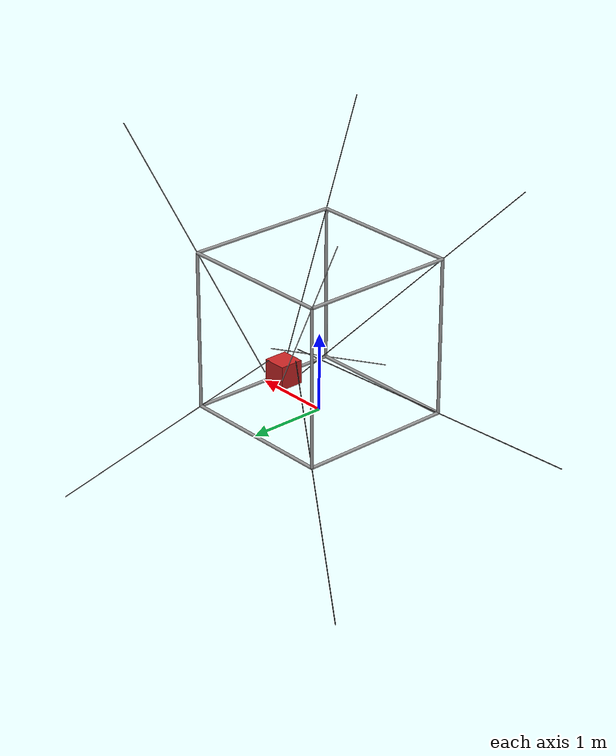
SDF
<?xml version="1.0"?>
<sdf version="1.4">
  <model name="sdf/cdpr_final">
    <!--Definition of the robot frame-->
    <link name="frame">
      <pose>0 0 0 0 0 0</pose>
      <inertial>
        <inertia>
          <ixx>100000</ixx>
          <iyy>100000</iyy>
          <izz>100000</izz>
          <ixy>0</ixy>
          <ixz>0</ixz>
          <iyz>0</iyz>
        </inertia>
        <mass>100000</mass>
      </inertial>
      <visual name="visual1">
        <geometry>
          <cylinder>
            <radius>0.02</radius>
            <length>2.0</length>
          </cylinder>
        </geometry>
        <pose>-1.000000 -1.000000 1.000000 0.000000 0.000000 0.000000</pose>
        <material>
          <script>
            <uri>file://media/materials/scripts/kitchen.material</uri>
            <name>Gazebo/Grey</name>
          </script>
        </material>
      </visual>
      <collision name="collision1">
        <geometry>
          <cylinder>
            <radius>0.02</radius>
          </cylinder>
        </geometry>
        <pose>-1.000000 -1.000000 1.000000 0.000000 0.000000 0.000000</pose>
      </collision>
      <visual name="visual2">
        <geometry>
          <cylinder>
            <radius>0.02</radius>
            <length>2.0</length>
          </cylinder>
        </geometry>
        <pose>-1.000000 0.000000 0.000000 1.570796 0.000000 0.000000</pose>
        <material>
          <script>
            <uri>file://media/materials/scripts/kitchen.material</uri>
            <name>Gazebo/Grey</name>
          </script>
        </material>
      </visual>
      <collision name="collision2">
        <geometry>
          <cylinder>
            <radius>0.02</radius>
          </cylinder>
        </geometry>
        <pose>-1.000000 0.000000 0.000000 1.570796 0.000000 0.000000</pose>
      </collision>
      <visual name="visual3">
        <geometry>
          <cylinder>
            <radius>0.02</radius>
            <length>2.0</length>
          </cylinder>
        </geometry>
        <pose>0.000000 -1.000000 0.000000 0.000000 1.570796 0.000000</pose>
        <material>
          <script>
            <uri>file://media/materials/scripts/kitchen.material</uri>
            <name>Gazebo/Grey</name>
          </script>
        </material>
      </visual>
      <collision name="collision3">
        <geometry>
          <cylinder>
            <radius>0.02</radius>
          </cylinder>
        </geometry>
        <pose>0.000000 -1.000000 0.000000 0.000000 1.570796 0.000000</pose>
      </collision>
      <visual name="visual4">
        <geometry>
          <cylinder>
            <radius>0.02</radius>
            <length>2.0</length>
          </cylinder>
        </geometry>
        <pose>-1.000000 0.000000 2.000000 1.570796 0.000000 0.000000</pose>
        <material>
          <script>
            <uri>file://media/materials/scripts/kitchen.material</uri>
            <name>Gazebo/Grey</name>
          </script>
        </material>
      </visual>
      <collision name="collision4">
        <geometry>
          <cylinder>
            <radius>0.02</radius>
          </cylinder>
        </geometry>
        <pose>-1.000000 0.000000 2.000000 1.570796 0.000000 0.000000</pose>
      </collision>
      <visual name="visual5">
        <geometry>
          <cylinder>
            <radius>0.02</radius>
            <length>2.0</length>
          </cylinder>
        </geometry>
        <pose>0.000000 -1.000000 2.000000 0.000000 1.570796 0.000000</pose>
        <material>
          <script>
            <uri>file://media/materials/scripts/kitchen.material</uri>
            <name>Gazebo/Grey</name>
          </script>
        </material>
      </visual>
      <collision name="collision5">
        <geometry>
          <cylinder>
            <radius>0.02</radius>
          </cylinder>
        </geometry>
        <pose>0.000000 -1.000000 2.000000 0.000000 1.570796 0.000000</pose>
      </collision>
      <visual name="visual6">
        <geometry>
          <cylinder>
            <radius>0.02</radius>
            <length>2.0</length>
          </cylinder>
        </geometry>
        <pose>-1.000000 1.000000 1.000000 0.000000 0.000000 0.000000</pose>
        <material>
          <script>
            <uri>file://media/materials/scripts/kitchen.material</uri>
            <name>Gazebo/Grey</name>
          </script>
        </material>
      </visual>
      <collision name="collision6">
        <geometry>
          <cylinder>
            <radius>0.02</radius>
          </cylinder>
        </geometry>
        <pose>-1.000000 1.000000 1.000000 0.000000 0.000000 0.000000</pose>
      </collision>
      <visual name="visual7">
        <geometry>
          <cylinder>
            <radius>0.02</radius>
            <length>2.0</length>
          </cylinder>
        </geometry>
        <pose>0.000000 1.000000 0.000000 0.000000 1.570796 0.000000</pose>
        <material>
          <script>
            <uri>file://media/materials/scripts/kitchen.material</uri>
            <name>Gazebo/Grey</name>
          </script>
        </material>
      </visual>
      <collision name="collision7">
        <geometry>
          <cylinder>
            <radius>0.02</radius>
          </cylinder>
        </geometry>
        <pose>0.000000 1.000000 0.000000 0.000000 1.570796 0.000000</pose>
      </collision>
      <visual name="visual8">
        <geometry>
          <cylinder>
            <radius>0.02</radius>
            <length>2.0</length>
          </cylinder>
        </geometry>
        <pose>0.000000 1.000000 2.000000 0.000000 1.570796 0.000000</pose>
        <material>
          <script>
            <uri>file://media/materials/scripts/kitchen.material</uri>
            <name>Gazebo/Grey</name>
          </script>
        </material>
      </visual>
      <collision name="collision8">
        <geometry>
          <cylinder>
            <radius>0.02</radius>
          </cylinder>
        </geometry>
        <pose>0.000000 1.000000 2.000000 0.000000 1.570796 0.000000</pose>
      </collision>
      <visual name="visual9">
        <geometry>
          <cylinder>
            <radius>0.02</radius>
            <length>2.0</length>
          </cylinder>
        </geometry>
        <pose>1.000000 -1.000000 1.000000 0.000000 0.000000 0.000000</pose>
        <material>
          <script>
            <uri>file://media/materials/scripts/kitchen.material</uri>
            <name>Gazebo/Grey</name>
          </script>
        </material>
      </visual>
      <collision name="collision9">
        <geometry>
          <cylinder>
            <radius>0.02</radius>
          </cylinder>
        </geometry>
        <pose>1.000000 -1.000000 1.000000 0.000000 0.000000 0.000000</pose>
      </collision>
      <visual name="visual10">
        <geometry>
          <cylinder>
            <radius>0.02</radius>
            <length>2.0</length>
          </cylinder>
        </geometry>
        <pose>1.000000 0.000000 0.000000 1.570796 0.000000 0.000000</pose>
        <material>
          <script>
            <uri>file://media/materials/scripts/kitchen.material</uri>
            <name>Gazebo/Grey</name>
          </script>
        </material>
      </visual>
      <collision name="collision10">
        <geometry>
          <cylinder>
            <radius>0.02</radius>
          </cylinder>
        </geometry>
        <pose>1.000000 0.000000 0.000000 1.570796 0.000000 0.000000</pose>
      </collision>
      <visual name="visual11">
        <geometry>
          <cylinder>
            <radius>0.02</radius>
            <length>2.0</length>
          </cylinder>
        </geometry>
        <pose>1.000000 0.000000 2.000000 1.570796 0.000000 0.000000</pose>
        <material>
          <script>
            <uri>file://media/materials/scripts/kitchen.material</uri>
            <name>Gazebo/Grey</name>
          </script>
        </material>
      </visual>
      <collision name="collision11">
        <geometry>
          <cylinder>
            <radius>0.02</radius>
          </cylinder>
        </geometry>
        <pose>1.000000 0.000000 2.000000 1.570796 0.000000 0.000000</pose>
      </collision>
      <visual name="visual12">
        <geometry>
          <cylinder>
            <radius>0.02</radius>
            <length>2.0</length>
          </cylinder>
        </geometry>
        <pose>1.000000 1.000000 1.000000 0.000000 0.000000 0.000000</pose>
        <material>
          <script>
            <uri>file://media/materials/scripts/kitchen.material</uri>
            <name>Gazebo/Grey</name>
          </script>
        </material>
      </visual>
      <collision name="collision12">
        <geometry>
          <cylinder>
            <radius>0.02</radius>
          </cylinder>
        </geometry>
        <pose>1.000000 1.000000 1.000000 0.000000 0.000000 0.000000</pose>
      </collision>
    </link>
    <!--Definition of the robot cables-->
    <!--Definition of the robot platform-->
    <link name="platform">
      <pose>0.300000 0.300000 0.500000 0.000000 0.000000 0.000000</pose>
      <visual name="visualpf">
        <geometry>
          <box>
            <size>0.300000 0.300000 0.300000</size>
          </box>
        </geometry>
        <material>
          <script>
            <uri>file://media/materials/scripts/kitchen.material</uri>
            <name>Gazebo/Red</name>
          </script>
        </material>
      </visual>
      <collision name="collisionpf">
        <geometry>
          <box>
            <size>0.300000 0.300000 0.300000</size>
          </box>
        </geometry>
      </collision>
      <inertial>
        <inertia>
          <ixx>1.0</ixx>
          <iyy>1.0</iyy>
          <izz>1.0</izz>
          <ixy>0.0</ixy>
          <ixz>0.0</ixz>
          <iyz>0.0</iyz>
        </inertia>
        <mass>4</mass>
      </inertial>
    </link>
    <link name="cable0">
      <pose>-0.749785 -0.749785 1.667694 -2.496197 0.541532 -1.385687</pose>
      <visual name="visual">
        <geometry>
          <cylinder>
            <radius>0.005</radius>
            <length>3.4641016151377544</length>
          </cylinder>
        </geometry>
        <material>
          <script>
            <uri>file://media/materials/scripts/kitchen.material</uri>
            <name>Gazebo/Black</name>
          </script>
        </material>
      </visual>
      <inertial>
        <inertia>
          <ixx>0.001</ixx>
          <iyy>0.001</iyy>
          <izz>0.001</izz>
          <ixy>0</ixy>
          <ixz>0</ixz>
          <iyz>0</iyz>
        </inertia>
        <mass>0.001</mass>
      </inertial>
    </link>
    <link name="virt_X0">
      <inertial>
        <inertia>
          <ixx>0.001</ixx>
          <iyy>0.001</iyy>
          <izz>0.001</izz>
          <ixy>0</ixy>
          <ixz>0</ixz>
          <iyz>0</iyz>
        </inertia>
        <mass>0.001</mass>
      </inertial>
      <pose>-1.000000 -1.000000 2.000000 -2.496197 0.541532 -1.385687</pose>
    </link>
    <joint name="rev_X0" type="revolute">
      <pose>0 0 0 -2.496197 0.541532 -1.385687</pose>
      <parent>frame</parent>
      <child>virt_X0</child>
      <axis>
        <xyz>0.157720 -0.842280 -0.515450</xyz>
        <limit>
          <effort>100</effort>
          <velocity>10</velocity>
        </limit>
        <dynamics>
          <damping>0.01</damping>
        </dynamics>
      </axis>
    </joint>
    <link name="virt_Y0">
      <inertial>
        <inertia>
          <ixx>0.001</ixx>
          <iyy>0.001</iyy>
          <izz>0.001</izz>
          <ixy>0</ixy>
          <ixz>0</ixz>
          <iyz>0</iyz>
        </inertia>
        <mass>0.001</mass>
      </inertial>
      <pose>-1.000000 -1.000000 2.000000 -2.496197 0.541532 -1.385687</pose>
    </link>
    <joint name="rev_Y0" type="revolute">
      <pose>0 0 0 -2.496197 0.541532 -1.385687</pose>
      <parent>virt_X0</parent>
      <child>virt_Y0</child>
      <axis>
        <xyz>-0.842280 0.157720 -0.515450</xyz>
        <limit>
          <effort>100</effort>
          <velocity>10</velocity>
        </limit>
        <dynamics>
          <damping>0.01</damping>
        </dynamics>
      </axis>
    </joint>
    <joint name="cable0" type="prismatic">
      <pose>0 0 -0.379164 -2.496197 0.541532 -1.385687</pose>
      <parent>virt_Y0</parent>
      <child>cable0</child>
      <axis>
        <xyz>-0.515450 -0.515450 0.684561</xyz>
        <limit>
          <lower>-1.7320508075688772</lower>
          <upper>1.7320508075688772</upper>
          <effort>100</effort>
          <velocity>10</velocity>
        </limit>
        <dynamics>
          <damping>1</damping>
        </dynamics>
      </axis>
    </joint>
    <link name="virt_Xpf0">
      <inertial>
        <inertia>
          <ixx>0.001</ixx>
          <iyy>0.001</iyy>
          <izz>0.001</izz>
          <ixy>0</ixy>
          <ixz>0</ixz>
          <iyz>0</iyz>
        </inertia>
        <mass>0.001</mass>
      </inertial>
      <pose>0.143000 0.143000 0.482000 -2.496197 0.541532 -1.385687</pose>
    </link>
    <joint name="rev_Xpf0" type="revolute">
      <pose>0 0 0 -2.496197 0.541532 -1.385687</pose>
      <parent>platform</parent>
      <child>virt_Xpf0</child>
      <axis>
        <xyz>1 0 0</xyz>
        <limit>
          <effort>100</effort>
          <velocity>10</velocity>
        </limit>
        <dynamics>
          <damping>0.01</damping>
        </dynamics>
      </axis>
    </joint>
    <link name="virt_Ypf0">
      <inertial>
        <inertia>
          <ixx>0.001</ixx>
          <iyy>0.001</iyy>
          <izz>0.001</izz>
          <ixy>0</ixy>
          <ixz>0</ixz>
          <iyz>0</iyz>
        </inertia>
        <mass>0.001</mass>
      </inertial>
      <pose>0.143000 0.143000 0.482000 -2.496197 0.541532 -1.385687</pose>
    </link>
    <joint name="rev_Ypf0" type="revolute">
      <pose>0 0 0 -2.496197 0.541532 -1.385687</pose>
      <parent>virt_Xpf0</parent>
      <child>virt_Ypf0</child>
      <axis>
        <xyz>0 1 0</xyz>
        <limit>
          <effort>100</effort>
          <velocity>10</velocity>
        </limit>
        <dynamics>
          <damping>0.01</damping>
        </dynamics>
      </axis>
    </joint>
    <joint name="rev_Zpf0" type="revolute">
      <pose>0 0 0 -2.496197 0.541532 -1.385687</pose>
      <child>virt_Ypf0</child>
      <parent>cable0</parent>
      <axis>
        <xyz>0 0 1</xyz>
        <limit>
          <effort>100</effort>
          <velocity>10</velocity>
        </limit>
        <dynamics>
          <damping>0.01</damping>
        </dynamics>
      </axis>
    </joint>
    <link name="cable1">
      <pose>-0.858756 0.932900 1.812415 2.798068 0.616722 2.144192</pose>
      <visual name="visual">
        <geometry>
          <cylinder>
            <radius>0.005</radius>
            <length>3.4641016151377544</length>
          </cylinder>
        </geometry>
        <material>
          <script>
            <uri>file://media/materials/scripts/kitchen.material</uri>
            <name>Gazebo/Black</name>
          </script>
        </material>
      </visual>
      <inertial>
        <inertia>
          <ixx>0.001</ixx>
          <iyy>0.001</iyy>
          <izz>0.001</izz>
          <ixy>0</ixy>
          <ixz>0</ixz>
          <iyz>0</iyz>
        </inertia>
        <mass>0.001</mass>
      </inertial>
    </link>
    <link name="virt_X1">
      <inertial>
        <inertia>
          <ixx>0.001</ixx>
          <iyy>0.001</iyy>
          <izz>0.001</izz>
          <ixy>0</ixy>
          <ixz>0</ixz>
          <iyz>0</iyz>
        </inertia>
        <mass>0.001</mass>
      </inertial>
      <pose>-1.000000 1.000000 2.000000 2.798068 0.616722 2.144192</pose>
    </link>
    <joint name="rev_X1" type="revolute">
      <pose>0 0 0 2.798068 0.616722 2.144192</pose>
      <parent>frame</parent>
      <child>virt_X1</child>
      <axis>
        <xyz>-0.442550 0.685306 -0.578364</xyz>
        <limit>
          <effort>100</effort>
          <velocity>10</velocity>
        </limit>
        <dynamics>
          <damping>0.01</damping>
        </dynamics>
      </axis>
    </joint>
    <link name="virt_Y1">
      <inertial>
        <inertia>
          <ixx>0.001</ixx>
          <iyy>0.001</iyy>
          <izz>0.001</izz>
          <ixy>0</ixy>
          <ixz>0</ixz>
          <iyz>0</iyz>
        </inertia>
        <mass>0.001</mass>
      </inertial>
      <pose>-1.000000 1.000000 2.000000 2.798068 0.616722 2.144192</pose>
    </link>
    <joint name="rev_Y1" type="revolute">
      <pose>0 0 0 2.798068 0.616722 2.144192</pose>
      <parent>virt_X1</parent>
      <child>virt_Y1</child>
      <axis>
        <xyz>0.685306 0.674435 0.274761</xyz>
        <limit>
          <effort>100</effort>
          <velocity>10</velocity>
        </limit>
        <dynamics>
          <damping>0.01</damping>
        </dynamics>
      </axis>
    </joint>
    <joint name="cable1" type="prismatic">
      <pose>0 0 -0.214036 2.798068 0.616722 2.144192</pose>
      <parent>virt_Y1</parent>
      <child>cable1</child>
      <axis>
        <xyz>-0.578364 0.274761 0.768116</xyz>
        <limit>
          <lower>-1.7320508075688772</lower>
          <upper>1.7320508075688772</upper>
          <effort>100</effort>
          <velocity>10</velocity>
        </limit>
        <dynamics>
          <damping>1</damping>
        </dynamics>
      </axis>
    </joint>
    <link name="virt_Xpf1">
      <inertial>
        <inertia>
          <ixx>0.001</ixx>
          <iyy>0.001</iyy>
          <izz>0.001</izz>
          <ixy>0</ixy>
          <ixz>0</ixz>
          <iyz>0</iyz>
        </inertia>
        <mass>0.001</mass>
      </inertial>
      <pose>0.143000 0.457000 0.482000 2.798068 0.616722 2.144192</pose>
    </link>
    <joint name="rev_Xpf1" type="revolute">
      <pose>0 0 0 2.798068 0.616722 2.144192</pose>
      <parent>platform</parent>
      <child>virt_Xpf1</child>
      <axis>
        <xyz>1 0 0</xyz>
        <limit>
          <effort>100</effort>
          <velocity>10</velocity>
        </limit>
        <dynamics>
          <damping>0.01</damping>
        </dynamics>
      </axis>
    </joint>
    <link name="virt_Ypf1">
      <inertial>
        <inertia>
          <ixx>0.001</ixx>
          <iyy>0.001</iyy>
          <izz>0.001</izz>
          <ixy>0</ixy>
          <ixz>0</ixz>
          <iyz>0</iyz>
        </inertia>
        <mass>0.001</mass>
      </inertial>
      <pose>0.143000 0.457000 0.482000 2.798068 0.616722 2.144192</pose>
    </link>
    <joint name="rev_Ypf1" type="revolute">
      <pose>0 0 0 2.798068 0.616722 2.144192</pose>
      <parent>virt_Xpf1</parent>
      <child>virt_Ypf1</child>
      <axis>
        <xyz>0 1 0</xyz>
        <limit>
          <effort>100</effort>
          <velocity>10</velocity>
        </limit>
        <dynamics>
          <damping>0.01</damping>
        </dynamics>
      </axis>
    </joint>
    <joint name="rev_Zpf1" type="revolute">
      <pose>0 0 0 2.798068 0.616722 2.144192</pose>
      <child>virt_Ypf1</child>
      <parent>cable1</parent>
      <axis>
        <xyz>0 0 1</xyz>
        <limit>
          <effort>100</effort>
          <velocity>10</velocity>
        </limit>
        <dynamics>
          <damping>0.01</damping>
        </dynamics>
      </axis>
    </joint>
    <link name="cable2">
      <pose>1.009853 1.009853 2.027544 2.798068 -0.324874 -1.513954</pose>
      <visual name="visual">
        <geometry>
          <cylinder>
            <radius>0.005</radius>
            <length>3.4641016151377544</length>
          </cylinder>
        </geometry>
        <material>
          <script>
            <uri>file://media/materials/scripts/kitchen.material</uri>
            <name>Gazebo/Black</name>
          </script>
        </material>
      </visual>
      <inertial>
        <inertia>
          <ixx>0.001</ixx>
          <iyy>0.001</iyy>
          <izz>0.001</izz>
          <ixy>0</ixy>
          <ixz>0</ixz>
          <iyz>0</iyz>
        </inertia>
        <mass>0.001</mass>
      </inertial>
    </link>
    <link name="virt_X2">
      <inertial>
        <inertia>
          <ixx>0.001</ixx>
          <iyy>0.001</iyy>
          <izz>0.001</izz>
          <ixy>0</ixy>
          <ixz>0</ixz>
          <iyz>0</iyz>
        </inertia>
        <mass>0.001</mass>
      </inertial>
      <pose>1.000000 1.000000 2.000000 2.798068 -0.324874 -1.513954</pose>
    </link>
    <joint name="rev_X2" type="revolute">
      <pose>0 0 0 2.798068 -0.324874 -1.513954</pose>
      <parent>frame</parent>
      <child>virt_X2</child>
      <axis>
        <xyz>0.053840 -0.946160 0.319190</xyz>
        <limit>
          <effort>100</effort>
          <velocity>10</velocity>
        </limit>
        <dynamics>
          <damping>0.01</damping>
        </dynamics>
      </axis>
    </joint>
    <link name="virt_Y2">
      <inertial>
        <inertia>
          <ixx>0.001</ixx>
          <iyy>0.001</iyy>
          <izz>0.001</izz>
          <ixy>0</ixy>
          <ixz>0</ixz>
          <iyz>0</iyz>
        </inertia>
        <mass>0.001</mass>
      </inertial>
      <pose>1.000000 1.000000 2.000000 2.798068 -0.324874 -1.513954</pose>
    </link>
    <joint name="rev_Y2" type="revolute">
      <pose>0 0 0 2.798068 -0.324874 -1.513954</pose>
      <parent>virt_X2</parent>
      <child>virt_Y2</child>
      <axis>
        <xyz>-0.946160 0.053840 0.319190</xyz>
        <limit>
          <effort>100</effort>
          <velocity>10</velocity>
        </limit>
        <dynamics>
          <damping>0.01</damping>
        </dynamics>
      </axis>
    </joint>
    <joint name="cable2" type="prismatic">
      <pose>0 0 0.031428 2.798068 -0.324874 -1.513954</pose>
      <parent>virt_Y2</parent>
      <child>cable2</child>
      <axis>
        <xyz>0.319190 0.319190 0.892320</xyz>
        <limit>
          <lower>-1.7320508075688772</lower>
          <upper>1.7320508075688772</upper>
          <effort>100</effort>
          <velocity>10</velocity>
        </limit>
        <dynamics>
          <damping>1</damping>
        </dynamics>
      </axis>
    </joint>
    <link name="virt_Xpf2">
      <inertial>
        <inertia>
          <ixx>0.001</ixx>
          <iyy>0.001</iyy>
          <izz>0.001</izz>
          <ixy>0</ixy>
          <ixz>0</ixz>
          <iyz>0</iyz>
        </inertia>
        <mass>0.001</mass>
      </inertial>
      <pose>0.457000 0.457000 0.482000 2.798068 -0.324874 -1.513954</pose>
    </link>
    <joint name="rev_Xpf2" type="revolute">
      <pose>0 0 0 2.798068 -0.324874 -1.513954</pose>
      <parent>platform</parent>
      <child>virt_Xpf2</child>
      <axis>
        <xyz>1 0 0</xyz>
        <limit>
          <effort>100</effort>
          <velocity>10</velocity>
        </limit>
        <dynamics>
          <damping>0.01</damping>
        </dynamics>
      </axis>
    </joint>
    <link name="virt_Ypf2">
      <inertial>
        <inertia>
          <ixx>0.001</ixx>
          <iyy>0.001</iyy>
          <izz>0.001</izz>
          <ixy>0</ixy>
          <ixz>0</ixz>
          <iyz>0</iyz>
        </inertia>
        <mass>0.001</mass>
      </inertial>
      <pose>0.457000 0.457000 0.482000 2.798068 -0.324874 -1.513954</pose>
    </link>
    <joint name="rev_Ypf2" type="revolute">
      <pose>0 0 0 2.798068 -0.324874 -1.513954</pose>
      <parent>virt_Xpf2</parent>
      <child>virt_Ypf2</child>
      <axis>
        <xyz>0 1 0</xyz>
        <limit>
          <effort>100</effort>
          <velocity>10</velocity>
        </limit>
        <dynamics>
          <damping>0.01</damping>
        </dynamics>
      </axis>
    </joint>
    <joint name="rev_Zpf2" type="revolute">
      <pose>0 0 0 2.798068 -0.324874 -1.513954</pose>
      <child>virt_Ypf2</child>
      <parent>cable2</parent>
      <axis>
        <xyz>0 0 1</xyz>
        <limit>
          <effort>100</effort>
          <velocity>10</velocity>
        </limit>
        <dynamics>
          <damping>0.01</damping>
        </dynamics>
      </axis>
    </joint>
    <link name="cable3">
      <pose>0.932900 -0.858756 1.812415 -2.496197 -0.278341 0.793393</pose>
      <visual name="visual">
        <geometry>
          <cylinder>
            <radius>0.005</radius>
            <length>3.4641016151377544</length>
          </cylinder>
        </geometry>
        <material>
          <script>
            <uri>file://media/materials/scripts/kitchen.material</uri>
            <name>Gazebo/Black</name>
          </script>
        </material>
      </visual>
      <inertial>
        <inertia>
          <ixx>0.001</ixx>
          <iyy>0.001</iyy>
          <izz>0.001</izz>
          <ixy>0</ixy>
          <ixz>0</ixz>
          <iyz>0</iyz>
        </inertia>
        <mass>0.001</mass>
      </inertial>
    </link>
    <link name="virt_X3">
      <inertial>
        <inertia>
          <ixx>0.001</ixx>
          <iyy>0.001</iyy>
          <izz>0.001</izz>
          <ixy>0</ixy>
          <ixz>0</ixz>
          <iyz>0</iyz>
        </inertia>
        <mass>0.001</mass>
      </inertial>
      <pose>1.000000 -1.000000 2.000000 -2.496197 -0.278341 0.793393</pose>
    </link>
    <joint name="rev_X3" type="revolute">
      <pose>0 0 0 -2.496197 -0.278341 0.793393</pose>
      <parent>frame</parent>
      <child>virt_X3</child>
      <axis>
        <xyz>0.674435 0.685306 0.274761</xyz>
        <limit>
          <effort>100</effort>
          <velocity>10</velocity>
        </limit>
        <dynamics>
          <damping>0.01</damping>
        </dynamics>
      </axis>
    </joint>
    <link name="virt_Y3">
      <inertial>
        <inertia>
          <ixx>0.001</ixx>
          <iyy>0.001</iyy>
          <izz>0.001</izz>
          <ixy>0</ixy>
          <ixz>0</ixz>
          <iyz>0</iyz>
        </inertia>
        <mass>0.001</mass>
      </inertial>
      <pose>1.000000 -1.000000 2.000000 -2.496197 -0.278341 0.793393</pose>
    </link>
    <joint name="rev_Y3" type="revolute">
      <pose>0 0 0 -2.496197 -0.278341 0.793393</pose>
      <parent>virt_X3</parent>
      <child>virt_Y3</child>
      <axis>
        <xyz>0.685306 -0.442550 -0.578364</xyz>
        <limit>
          <effort>100</effort>
          <velocity>10</velocity>
        </limit>
        <dynamics>
          <damping>0.01</damping>
        </dynamics>
      </axis>
    </joint>
    <joint name="cable3" type="prismatic">
      <pose>0 0 -0.214036 -2.496197 -0.278341 0.793393</pose>
      <parent>virt_Y3</parent>
      <child>cable3</child>
      <axis>
        <xyz>0.274761 -0.578364 0.768116</xyz>
        <limit>
          <lower>-1.7320508075688772</lower>
          <upper>1.7320508075688772</upper>
          <effort>100</effort>
          <velocity>10</velocity>
        </limit>
        <dynamics>
          <damping>1</damping>
        </dynamics>
      </axis>
    </joint>
    <link name="virt_Xpf3">
      <inertial>
        <inertia>
          <ixx>0.001</ixx>
          <iyy>0.001</iyy>
          <izz>0.001</izz>
          <ixy>0</ixy>
          <ixz>0</ixz>
          <iyz>0</iyz>
        </inertia>
        <mass>0.001</mass>
      </inertial>
      <pose>0.457000 0.143000 0.482000 -2.496197 -0.278341 0.793393</pose>
    </link>
    <joint name="rev_Xpf3" type="revolute">
      <pose>0 0 0 -2.496197 -0.278341 0.793393</pose>
      <parent>platform</parent>
      <child>virt_Xpf3</child>
      <axis>
        <xyz>1 0 0</xyz>
        <limit>
          <effort>100</effort>
          <velocity>10</velocity>
        </limit>
        <dynamics>
          <damping>0.01</damping>
        </dynamics>
      </axis>
    </joint>
    <link name="virt_Ypf3">
      <inertial>
        <inertia>
          <ixx>0.001</ixx>
          <iyy>0.001</iyy>
          <izz>0.001</izz>
          <ixy>0</ixy>
          <ixz>0</ixz>
          <iyz>0</iyz>
        </inertia>
        <mass>0.001</mass>
      </inertial>
      <pose>0.457000 0.143000 0.482000 -2.496197 -0.278341 0.793393</pose>
    </link>
    <joint name="rev_Ypf3" type="revolute">
      <pose>0 0 0 -2.496197 -0.278341 0.793393</pose>
      <parent>virt_Xpf3</parent>
      <child>virt_Ypf3</child>
      <axis>
        <xyz>0 1 0</xyz>
        <limit>
          <effort>100</effort>
          <velocity>10</velocity>
        </limit>
        <dynamics>
          <damping>0.01</damping>
        </dynamics>
      </axis>
    </joint>
    <joint name="rev_Zpf3" type="revolute">
      <pose>0 0 0 -2.496197 -0.278341 0.793393</pose>
      <child>virt_Ypf3</child>
      <parent>cable3</parent>
      <axis>
        <xyz>0 0 1</xyz>
        <limit>
          <effort>100</effort>
          <velocity>10</velocity>
        </limit>
        <dynamics>
          <damping>0.01</damping>
        </dynamics>
      </axis>
    </joint>
    <link name="cable4">
      <pose>-0.927519 -0.939897 0.039920 -0.984508 0.787666 -0.438534</pose>
      <visual name="visual">
        <geometry>
          <cylinder>
            <radius>0.005</radius>
            <length>3.4641016151377544</length>
          </cylinder>
        </geometry>
        <material>
          <script>
            <uri>file://media/materials/scripts/kitchen.material</uri>
            <name>Gazebo/Black</name>
          </script>
        </material>
      </visual>
      <inertial>
        <inertia>
          <ixx>0.001</ixx>
          <iyy>0.001</iyy>
          <izz>0.001</izz>
          <ixy>0</ixy>
          <ixz>0</ixz>
          <iyz>0</iyz>
        </inertia>
        <mass>0.001</mass>
      </inertial>
    </link>
    <link name="virt_X4">
      <inertial>
        <inertia>
          <ixx>0.001</ixx>
          <iyy>0.001</iyy>
          <izz>0.001</izz>
          <ixy>0</ixy>
          <ixz>0</ixz>
          <iyz>0</iyz>
        </inertia>
        <mass>0.001</mass>
      </inertial>
      <pose>-1.000000 -1.000000 0.000000 -0.984508 0.787666 -0.438534</pose>
    </link>
    <joint name="rev_X4" type="revolute">
      <pose>0 0 0 -0.984508 0.787666 -0.438534</pose>
      <parent>frame</parent>
      <child>virt_X4</child>
      <axis>
        <xyz>0.638743 -0.299565 -0.708708</xyz>
        <limit>
          <effort>100</effort>
          <velocity>10</velocity>
        </limit>
        <dynamics>
          <damping>0.01</damping>
        </dynamics>
      </axis>
    </joint>
    <link name="virt_Y4">
      <inertial>
        <inertia>
          <ixx>0.001</ixx>
          <iyy>0.001</iyy>
          <izz>0.001</izz>
          <ixy>0</ixy>
          <ixz>0</ixz>
          <iyz>0</iyz>
        </inertia>
        <mass>0.001</mass>
      </inertial>
      <pose>-1.000000 -1.000000 0.000000 -0.984508 0.787666 -0.438534</pose>
    </link>
    <joint name="rev_Y4" type="revolute">
      <pose>0 0 0 -0.984508 0.787666 -0.438534</pose>
      <parent>virt_X4</parent>
      <child>virt_Y4</child>
      <axis>
        <xyz>-0.299565 0.751591 -0.587683</xyz>
        <limit>
          <effort>100</effort>
          <velocity>10</velocity>
        </limit>
        <dynamics>
          <damping>0.01</damping>
        </dynamics>
      </axis>
    </joint>
    <joint name="cable4" type="prismatic">
      <pose>0 0 -0.096570 -0.984508 0.787666 -0.438534</pose>
      <parent>virt_Y4</parent>
      <child>cable4</child>
      <axis>
        <xyz>-0.708708 -0.587683 -0.390335</xyz>
        <limit>
          <lower>-1.7320508075688772</lower>
          <upper>1.7320508075688772</upper>
          <effort>100</effort>
          <velocity>10</velocity>
        </limit>
        <dynamics>
          <damping>1</damping>
        </dynamics>
      </axis>
    </joint>
    <link name="virt_Xpf4">
      <inertial>
        <inertia>
          <ixx>0.001</ixx>
          <iyy>0.001</iyy>
          <izz>0.001</izz>
          <ixy>0</ixy>
          <ixz>0</ixz>
          <iyz>0</iyz>
        </inertia>
        <mass>0.001</mass>
      </inertial>
      <pose>0.300000 0.078000 0.716000 -0.984508 0.787666 -0.438534</pose>
    </link>
    <joint name="rev_Xpf4" type="revolute">
      <pose>0 0 0 -0.984508 0.787666 -0.438534</pose>
      <parent>platform</parent>
      <child>virt_Xpf4</child>
      <axis>
        <xyz>1 0 0</xyz>
        <limit>
          <effort>100</effort>
          <velocity>10</velocity>
        </limit>
        <dynamics>
          <damping>0.01</damping>
        </dynamics>
      </axis>
    </joint>
    <link name="virt_Ypf4">
      <inertial>
        <inertia>
          <ixx>0.001</ixx>
          <iyy>0.001</iyy>
          <izz>0.001</izz>
          <ixy>0</ixy>
          <ixz>0</ixz>
          <iyz>0</iyz>
        </inertia>
        <mass>0.001</mass>
      </inertial>
      <pose>0.300000 0.078000 0.716000 -0.984508 0.787666 -0.438534</pose>
    </link>
    <joint name="rev_Ypf4" type="revolute">
      <pose>0 0 0 -0.984508 0.787666 -0.438534</pose>
      <parent>virt_Xpf4</parent>
      <child>virt_Ypf4</child>
      <axis>
        <xyz>0 1 0</xyz>
        <limit>
          <effort>100</effort>
          <velocity>10</velocity>
        </limit>
        <dynamics>
          <damping>0.01</damping>
        </dynamics>
      </axis>
    </joint>
    <joint name="rev_Zpf4" type="revolute">
      <pose>0 0 0 -0.984508 0.787666 -0.438534</pose>
      <child>virt_Ypf4</child>
      <parent>cable4</parent>
      <axis>
        <xyz>0 0 1</xyz>
        <limit>
          <effort>100</effort>
          <velocity>10</velocity>
        </limit>
        <dynamics>
          <damping>0.01</damping>
        </dynamics>
      </axis>
    </joint>
    <link name="cable5">
      <pose>-1.191044 1.124054 -0.126890 0.774099 0.822255 0.351742</pose>
      <visual name="visual">
        <geometry>
          <cylinder>
            <radius>0.005</radius>
            <length>3.4641016151377544</length>
          </cylinder>
        </geometry>
        <material>
          <script>
            <uri>file://media/materials/scripts/kitchen.material</uri>
            <name>Gazebo/Black</name>
          </script>
        </material>
      </visual>
      <inertial>
        <inertia>
          <ixx>0.001</ixx>
          <iyy>0.001</iyy>
          <izz>0.001</izz>
          <ixy>0</ixy>
          <ixz>0</ixz>
          <iyz>0</iyz>
        </inertia>
        <mass>0.001</mass>
      </inertial>
    </link>
    <link name="virt_X5">
      <inertial>
        <inertia>
          <ixx>0.001</ixx>
          <iyy>0.001</iyy>
          <izz>0.001</izz>
          <ixy>0</ixy>
          <ixz>0</ixz>
          <iyz>0</iyz>
        </inertia>
        <mass>0.001</mass>
      </inertial>
      <pose>-1.000000 1.000000 0.000000 0.774099 0.822255 0.351742</pose>
    </link>
    <joint name="rev_X5" type="revolute">
      <pose>0 0 0 0.774099 0.822255 0.351742</pose>
      <parent>frame</parent>
      <child>virt_X5</child>
      <axis>
        <xyz>0.638902 0.234479 -0.732683</xyz>
        <limit>
          <effort>100</effort>
          <velocity>10</velocity>
        </limit>
        <dynamics>
          <damping>0.01</damping>
        </dynamics>
      </axis>
    </joint>
    <link name="virt_Y5">
      <inertial>
        <inertia>
          <ixx>0.001</ixx>
          <iyy>0.001</iyy>
          <izz>0.001</izz>
          <ixy>0</ixy>
          <ixz>0</ixz>
          <iyz>0</iyz>
        </inertia>
        <mass>0.001</mass>
      </inertial>
      <pose>-1.000000 1.000000 0.000000 0.774099 0.822255 0.351742</pose>
    </link>
    <joint name="rev_Y5" type="revolute">
      <pose>0 0 0 0.774099 0.822255 0.351742</pose>
      <parent>virt_X5</parent>
      <child>virt_Y5</child>
      <axis>
        <xyz>0.234479 0.847741 0.475768</xyz>
        <limit>
          <effort>100</effort>
          <velocity>10</velocity>
        </limit>
        <dynamics>
          <damping>0.01</damping>
        </dynamics>
      </axis>
    </joint>
    <joint name="cable5" type="prismatic">
      <pose>0 0 0.306955 0.774099 0.822255 0.351742</pose>
      <parent>virt_Y5</parent>
      <child>cable5</child>
      <axis>
        <xyz>-0.732683 0.475768 -0.486643</xyz>
        <limit>
          <lower>-1.7320508075688772</lower>
          <upper>1.7320508075688772</upper>
          <effort>100</effort>
          <velocity>10</velocity>
        </limit>
        <dynamics>
          <damping>1</damping>
        </dynamics>
      </axis>
    </joint>
    <link name="virt_Xpf5">
      <inertial>
        <inertia>
          <ixx>0.001</ixx>
          <iyy>0.001</iyy>
          <izz>0.001</izz>
          <ixy>0</ixy>
          <ixz>0</ixz>
          <iyz>0</iyz>
        </inertia>
        <mass>0.001</mass>
      </inertial>
      <pose>0.078000 0.300000 0.716000 0.774099 0.822255 0.351742</pose>
    </link>
    <joint name="rev_Xpf5" type="revolute">
      <pose>0 0 0 0.774099 0.822255 0.351742</pose>
      <parent>platform</parent>
      <child>virt_Xpf5</child>
      <axis>
        <xyz>1 0 0</xyz>
        <limit>
          <effort>100</effort>
          <velocity>10</velocity>
        </limit>
        <dynamics>
          <damping>0.01</damping>
        </dynamics>
      </axis>
    </joint>
    <link name="virt_Ypf5">
      <inertial>
        <inertia>
          <ixx>0.001</ixx>
          <iyy>0.001</iyy>
          <izz>0.001</izz>
          <ixy>0</ixy>
          <ixz>0</ixz>
          <iyz>0</iyz>
        </inertia>
        <mass>0.001</mass>
      </inertial>
      <pose>0.078000 0.300000 0.716000 0.774099 0.822255 0.351742</pose>
    </link>
    <joint name="rev_Ypf5" type="revolute">
      <pose>0 0 0 0.774099 0.822255 0.351742</pose>
      <parent>virt_Xpf5</parent>
      <child>virt_Ypf5</child>
      <axis>
        <xyz>0 1 0</xyz>
        <limit>
          <effort>100</effort>
          <velocity>10</velocity>
        </limit>
        <dynamics>
          <damping>0.01</damping>
        </dynamics>
      </axis>
    </joint>
    <joint name="rev_Zpf5" type="revolute">
      <pose>0 0 0 0.774099 0.822255 0.351742</pose>
      <child>virt_Ypf5</child>
      <parent>cable5</parent>
      <axis>
        <xyz>0 0 1</xyz>
        <limit>
          <effort>100</effort>
          <velocity>10</velocity>
        </limit>
        <dynamics>
          <damping>0.01</damping>
        </dynamics>
      </axis>
    </joint>
    <link name="cable6">
      <pose>1.392710 1.268165 -0.401686 0.588647 -0.682682 -0.214543</pose>
      <visual name="visual">
        <geometry>
          <cylinder>
            <radius>0.005</radius>
            <length>3.4641016151377544</length>
          </cylinder>
        </geometry>
        <material>
          <script>
            <uri>file://media/materials/scripts/kitchen.material</uri>
            <name>Gazebo/Black</name>
          </script>
        </material>
      </visual>
      <inertial>
        <inertia>
          <ixx>0.001</ixx>
          <iyy>0.001</iyy>
          <izz>0.001</izz>
          <ixy>0</ixy>
          <ixz>0</ixz>
          <iyz>0</iyz>
        </inertia>
        <mass>0.001</mass>
      </inertial>
    </link>
    <link name="virt_X6">
      <inertial>
        <inertia>
          <ixx>0.001</ixx>
          <iyy>0.001</iyy>
          <izz>0.001</izz>
          <ixy>0</ixy>
          <ixz>0</ixz>
          <iyz>0</iyz>
        </inertia>
        <mass>0.001</mass>
      </inertial>
      <pose>1.000000 1.000000 0.000000 0.588647 -0.682682 -0.214543</pose>
    </link>
    <joint name="rev_X6" type="revolute">
      <pose>0 0 0 0.588647 -0.682682 -0.214543</pose>
      <parent>frame</parent>
      <child>virt_X6</child>
      <axis>
        <xyz>0.758095 -0.165186 0.630876</xyz>
        <limit>
          <effort>100</effort>
          <velocity>10</velocity>
        </limit>
        <dynamics>
          <damping>0.01</damping>
        </dynamics>
      </axis>
    </joint>
    <link name="virt_Y6">
      <inertial>
        <inertia>
          <ixx>0.001</ixx>
          <iyy>0.001</iyy>
          <izz>0.001</izz>
          <ixy>0</ixy>
          <ixz>0</ixz>
          <iyz>0</iyz>
        </inertia>
        <mass>0.001</mass>
      </inertial>
      <pose>1.000000 1.000000 0.000000 0.588647 -0.682682 -0.214543</pose>
    </link>
    <joint name="rev_Y6" type="revolute">
      <pose>0 0 0 0.588647 -0.682682 -0.214543</pose>
      <parent>virt_X6</parent>
      <child>virt_Y6</child>
      <axis>
        <xyz>-0.165186 0.887201 0.430798</xyz>
        <limit>
          <effort>100</effort>
          <velocity>10</velocity>
        </limit>
        <dynamics>
          <damping>0.01</damping>
        </dynamics>
      </axis>
    </joint>
    <joint name="cable6" type="prismatic">
      <pose>0 0 0.971705 0.588647 -0.682682 -0.214543</pose>
      <parent>virt_Y6</parent>
      <child>cable6</child>
      <axis>
        <xyz>0.630876 0.430798 -0.645296</xyz>
        <limit>
          <lower>-1.7320508075688772</lower>
          <upper>1.7320508075688772</upper>
          <effort>100</effort>
          <velocity>10</velocity>
        </limit>
        <dynamics>
          <damping>1</damping>
        </dynamics>
      </axis>
    </joint>
    <link name="virt_Xpf6">
      <inertial>
        <inertia>
          <ixx>0.001</ixx>
          <iyy>0.001</iyy>
          <izz>0.001</izz>
          <ixy>0</ixy>
          <ixz>0</ixz>
          <iyz>0</iyz>
        </inertia>
        <mass>0.001</mass>
      </inertial>
      <pose>0.300000 0.522000 0.716000 0.588647 -0.682682 -0.214543</pose>
    </link>
    <joint name="rev_Xpf6" type="revolute">
      <pose>0 0 0 0.588647 -0.682682 -0.214543</pose>
      <parent>platform</parent>
      <child>virt_Xpf6</child>
      <axis>
        <xyz>1 0 0</xyz>
        <limit>
          <effort>100</effort>
          <velocity>10</velocity>
        </limit>
        <dynamics>
          <damping>0.01</damping>
        </dynamics>
      </axis>
    </joint>
    <link name="virt_Ypf6">
      <inertial>
        <inertia>
          <ixx>0.001</ixx>
          <iyy>0.001</iyy>
          <izz>0.001</izz>
          <ixy>0</ixy>
          <ixz>0</ixz>
          <iyz>0</iyz>
        </inertia>
        <mass>0.001</mass>
      </inertial>
      <pose>0.300000 0.522000 0.716000 0.588647 -0.682682 -0.214543</pose>
    </link>
    <joint name="rev_Ypf6" type="revolute">
      <pose>0 0 0 0.588647 -0.682682 -0.214543</pose>
      <parent>virt_Xpf6</parent>
      <child>virt_Ypf6</child>
      <axis>
        <xyz>0 1 0</xyz>
        <limit>
          <effort>100</effort>
          <velocity>10</velocity>
        </limit>
        <dynamics>
          <damping>0.01</damping>
        </dynamics>
      </axis>
    </joint>
    <joint name="rev_Zpf6" type="revolute">
      <pose>0 0 0 0.588647 -0.682682 -0.214543</pose>
      <child>virt_Ypf6</child>
      <parent>cable6</parent>
      <axis>
        <xyz>0 0 1</xyz>
        <limit>
          <effort>100</effort>
          <velocity>10</velocity>
        </limit>
        <dynamics>
          <damping>0.01</damping>
        </dynamics>
      </axis>
    </joint>
    <link name="cable7">
      <pose>1.052987 -1.144106 -0.079369 -1.067363 -0.311582 0.185080</pose>
      <visual name="visual">
        <geometry>
          <cylinder>
            <radius>0.005</radius>
            <length>3.4641016151377544</length>
          </cylinder>
        </geometry>
        <material>
          <script>
            <uri>file://media/materials/scripts/kitchen.material</uri>
            <name>Gazebo/Black</name>
          </script>
        </material>
      </visual>
      <inertial>
        <inertia>
          <ixx>0.001</ixx>
          <iyy>0.001</iyy>
          <izz>0.001</izz>
          <ixy>0</ixy>
          <ixz>0</ixz>
          <iyz>0</iyz>
        </inertia>
        <mass>0.001</mass>
      </inertial>
    </link>
    <link name="virt_X7">
      <inertial>
        <inertia>
          <ixx>0.001</ixx>
          <iyy>0.001</iyy>
          <izz>0.001</izz>
          <ixy>0</ixy>
          <ixz>0</ixz>
          <iyz>0</iyz>
        </inertia>
        <mass>0.001</mass>
      </inertial>
      <pose>1.000000 -1.000000 0.000000 -1.067363 -0.311582 0.185080</pose>
    </link>
    <joint name="rev_X7" type="revolute">
      <pose>0 0 0 -1.067363 -0.311582 0.185080</pose>
      <parent>frame</parent>
      <child>virt_X7</child>
      <axis>
        <xyz>0.935594 0.175164 0.306565</xyz>
        <limit>
          <effort>100</effort>
          <velocity>10</velocity>
        </limit>
        <dynamics>
          <damping>0.01</damping>
        </dynamics>
      </axis>
    </joint>
    <link name="virt_Y7">
      <inertial>
        <inertia>
          <ixx>0.001</ixx>
          <iyy>0.001</iyy>
          <izz>0.001</izz>
          <ixy>0</ixy>
          <ixz>0</ixz>
          <iyz>0</iyz>
        </inertia>
        <mass>0.001</mass>
      </inertial>
      <pose>1.000000 -1.000000 0.000000 -1.067363 -0.311582 0.185080</pose>
    </link>
    <joint name="rev_Y7" type="revolute">
      <pose>0 0 0 -1.067363 -0.311582 0.185080</pose>
      <parent>virt_X7</parent>
      <child>virt_Y7</child>
      <axis>
        <xyz>0.175164 0.523613 -0.833755</xyz>
        <limit>
          <effort>100</effort>
          <velocity>10</velocity>
        </limit>
        <dynamics>
          <damping>0.01</damping>
        </dynamics>
      </axis>
    </joint>
    <joint name="cable7" type="prismatic">
      <pose>0 0 0.191999 -1.067363 -0.311582 0.185080</pose>
      <parent>virt_Y7</parent>
      <child>cable7</child>
      <axis>
        <xyz>0.306565 -0.833755 -0.459207</xyz>
        <limit>
          <lower>-1.7320508075688772</lower>
          <upper>1.7320508075688772</upper>
          <effort>100</effort>
          <velocity>10</velocity>
        </limit>
        <dynamics>
          <damping>1</damping>
        </dynamics>
      </axis>
    </joint>
    <link name="virt_Xpf7">
      <inertial>
        <inertia>
          <ixx>0.001</ixx>
          <iyy>0.001</iyy>
          <izz>0.001</izz>
          <ixy>0</ixy>
          <ixz>0</ixz>
          <iyz>0</iyz>
        </inertia>
        <mass>0.001</mass>
      </inertial>
      <pose>0.522000 0.300000 0.716000 -1.067363 -0.311582 0.185080</pose>
    </link>
    <joint name="rev_Xpf7" type="revolute">
      <pose>0 0 0 -1.067363 -0.311582 0.185080</pose>
      <parent>platform</parent>
      <child>virt_Xpf7</child>
      <axis>
        <xyz>1 0 0</xyz>
        <limit>
          <effort>100</effort>
          <velocity>10</velocity>
        </limit>
        <dynamics>
          <damping>0.01</damping>
        </dynamics>
      </axis>
    </joint>
    <link name="virt_Ypf7">
      <inertial>
        <inertia>
          <ixx>0.001</ixx>
          <iyy>0.001</iyy>
          <izz>0.001</izz>
          <ixy>0</ixy>
          <ixz>0</ixz>
          <iyz>0</iyz>
        </inertia>
        <mass>0.001</mass>
      </inertial>
      <pose>0.522000 0.300000 0.716000 -1.067363 -0.311582 0.185080</pose>
    </link>
    <joint name="rev_Ypf7" type="revolute">
      <pose>0 0 0 -1.067363 -0.311582 0.185080</pose>
      <parent>virt_Xpf7</parent>
      <child>virt_Ypf7</child>
      <axis>
        <xyz>0 1 0</xyz>
        <limit>
          <effort>100</effort>
          <velocity>10</velocity>
        </limit>
        <dynamics>
          <damping>0.01</damping>
        </dynamics>
      </axis>
    </joint>
    <joint name="rev_Zpf7" type="revolute">
      <pose>0 0 0 -1.067363 -0.311582 0.185080</pose>
      <child>virt_Ypf7</child>
      <parent>cable7</parent>
      <axis>
        <xyz>0 0 1</xyz>
        <limit>
          <effort>100</effort>
          <velocity>10</velocity>
        </limit>
        <dynamics>
          <damping>0.01</damping>
        </dynamics>
      </axis>
    </joint>
    <plugin name="cdpr_plugin" filename="libcdpr_plugin.so"/>
  </model>
</sdf>
